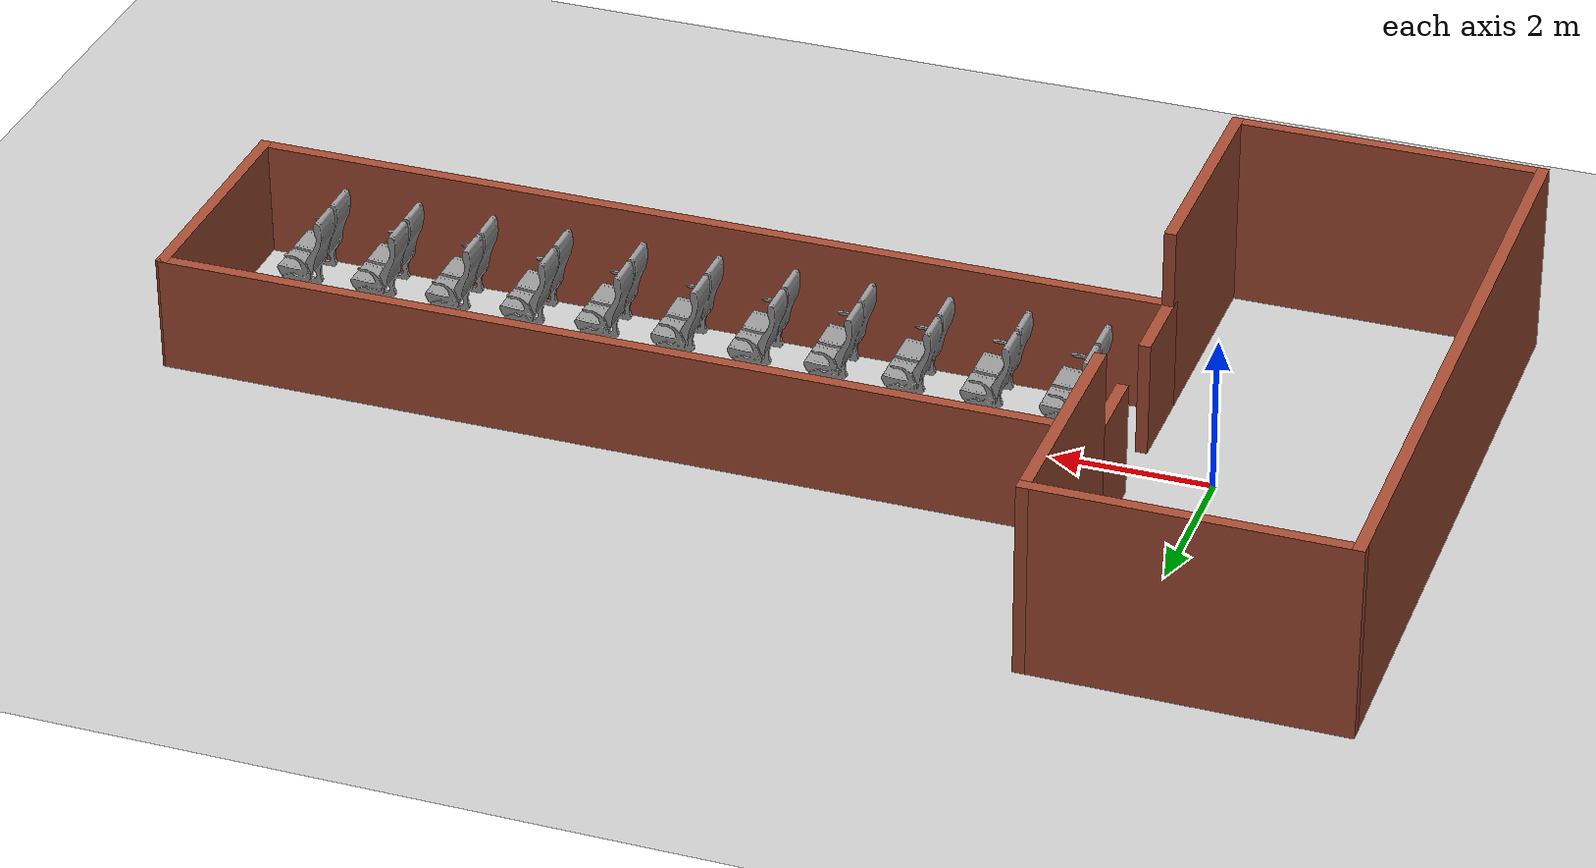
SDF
<sdf version="1.7">
 <world name="default">
  <model name="ground_plane">
   <static>1</static>
   <link name="link">
    <collision name="collision">
     <geometry><plane><normal>0 0 1</normal><size>100 100</size></plane></geometry>
     <surface><friction><ode><mu>100</mu><mu2>50</mu2></ode></friction></surface>
    </collision>
    <visual name="visual">
     <cast_shadows>0</cast_shadows>
     <geometry><plane><normal>0 0 1</normal><size>100 100</size></plane></geometry>
     <material>
      <script><uri>file://media/materials/scripts/gazebo.material</uri><name>Gazebo/Grey</name></script>
     </material>
    </visual>
   </link>
  </model>
  <model name="train_body">
   <pose>5.03944 0.009552 0 0 0 -1.56999</pose>
   <link name="Wall_12">
    <pose>0 -4.0165 0 0 -0 3.14159</pose>
    <visual name="Wall_12_Visual_0">
     <pose>-1.01653 0 0.75 0 -0 0</pose>
     <geometry><box><size>1.12829 0.15 1.5</size></box></geometry>
     <material>
      <script><uri>file://media/materials/scripts/gazebo.material</uri><name>Gazebo/Bricks</name></script>
      <ambient>1 1 1 1</ambient>
     </material>
     <meta><layer>0</layer></meta>
    </visual>
    <collision name="Wall_12_Collision_0">
     <geometry><box><size>1.12829 0.15 1.5</size></box></geometry>
     <pose>-1.01653 0 0.75 0 -0 0</pose>
    </collision>
    <visual name="Wall_12_Visual_1">
     <pose>1.01414 0 0.75 0 -0 0</pose>
     <geometry><box><size>1.13307 0.15 1.5</size></box></geometry>
     <material>
      <script><uri>file://media/materials/scripts/gazebo.material</uri><name>Gazebo/Bricks</name></script>
      <ambient>1 1 1 1</ambient>
     </material>
     <meta><layer>0</layer></meta>
    </visual>
    <collision name="Wall_12_Collision_1">
     <geometry><box><size>1.13307 0.15 1.5</size></box></geometry>
     <pose>1.01414 0 0.75 0 -0 0</pose>
    </collision>
   </link>
   <link name="Wall_14">
    <collision name="Wall_14_Collision">
     <geometry><box><size>12 0.15 1.5</size></box></geometry>
     <pose>0 0 0.75 0 -0 0</pose>
    </collision>
    <visual name="Wall_14_Visual">
     <pose>0 0 0.75 0 -0 0</pose>
     <geometry><box><size>12 0.15 1.5</size></box></geometry>
     <material>
      <script><uri>file://media/materials/scripts/gazebo.material</uri><name>Gazebo/Bricks</name></script>
      <ambient>1 1 1 1</ambient>
     </material>
     <meta><layer>0</layer></meta>
    </visual>
    <pose>1.5055 1.9085 0 0 -0 1.5708</pose>
   </link>
   <link name="Wall_17">
    <collision name="Wall_17_Collision">
     <geometry><box><size>12 0.15 1.5</size></box></geometry>
     <pose>0 0 0.75 0 -0 0</pose>
    </collision>
    <visual name="Wall_17_Visual">
     <pose>0 0 0.75 0 -0 0</pose>
     <geometry><box><size>12 0.15 1.5</size></box></geometry>
     <material>
      <script><uri>file://media/materials/scripts/gazebo.material</uri><name>Gazebo/Bricks</name></script>
      <ambient>1 1 1 1</ambient>
     </material>
     <meta><layer>0</layer></meta>
    </visual>
    <pose>-1.50568 1.9085 0 0 -0 1.57083</pose>
   </link>
   <link name="Wall_19">
    <collision name="Wall_19_Collision">
     <geometry><box><size>3.15 0.15 1.5</size></box></geometry>
     <pose>0 0 0.75 0 -0 0</pose>
    </collision>
    <visual name="Wall_19_Visual">
     <pose>0 0 0.75 0 -0 0</pose>
     <geometry><box><size>3.15 0.15 1.5</size></box></geometry>
     <material>
      <script><uri>file://media/materials/scripts/gazebo.material</uri><name>Gazebo/Bricks</name></script>
      <ambient>1 1 1 1</ambient>
     </material>
     <meta><layer>0</layer></meta>
    </visual>
    <pose>0.0055 7.8665 0 0 -0 0</pose>
   </link>
   <link name="Wall_21">
    <collision name="Wall_21_Collision">
     <geometry><box><size>3 0.15 2.5</size></box></geometry>
     <pose>0 0 1.25 0 -0 0</pose>
    </collision>
    <visual name="Wall_21_Visual">
     <pose>0 0 1.25 0 -0 0</pose>
     <geometry><box><size>3 0.15 2.5</size></box></geometry>
     <material>
      <script><uri>file://media/materials/scripts/gazebo.material</uri><name>Gazebo/Bricks</name></script>
      <ambient>1 1 1 1</ambient>
     </material>
     <meta><layer>0</layer></meta>
    </visual>
    <pose>-2.9305 -4.0165 0 0 -0 3.14159</pose>
   </link>
   <link name="Wall_22">
    <collision name="Wall_22_Collision">
     <geometry><box><size>4 0.15 2.5</size></box></geometry>
     <pose>0 0 1.25 0 -0 0</pose>
    </collision>
    <visual name="Wall_22_Visual">
     <pose>0 0 1.25 0 -0 0</pose>
     <geometry><box><size>4 0.15 2.5</size></box></geometry>
     <material>
      <script><uri>file://media/materials/scripts/gazebo.material</uri><name>Gazebo/Bricks</name></script>
      <ambient>1 1 1 1</ambient>
     </material>
     <meta><layer>0</layer></meta>
    </visual>
    <pose>-4.3555 -5.9415 0 0 -0 -1.5708</pose>
   </link>
   <link name="Wall_24">
    <collision name="Wall_24_Collision">
     <geometry><box><size>3 0.15 2.5</size></box></geometry>
     <pose>0 0 1.25 0 -0 0</pose>
    </collision>
    <visual name="Wall_24_Visual">
     <pose>0 0 1.25 0 -0 0</pose>
     <geometry><box><size>3 0.15 2.5</size></box></geometry>
     <material>
      <script><uri>file://media/materials/scripts/gazebo.material</uri><name>Gazebo/Bricks</name></script>
      <ambient>1 1 1 1</ambient>
     </material>
     <meta><layer>0</layer></meta>
    </visual>
    <pose>2.9305 -4.0165 0 0 -0 0</pose>
   </link>
   <link name="Wall_25">
    <collision name="Wall_25_Collision">
     <geometry><box><size>4 0.15 2.5</size></box></geometry>
     <pose>0 0 1.25 0 -0 0</pose>
    </collision>
    <visual name="Wall_25_Visual">
     <pose>0 0 1.25 0 -0 0</pose>
     <geometry><box><size>4 0.15 2.5</size></box></geometry>
     <material>
      <script><uri>file://media/materials/scripts/gazebo.material</uri><name>Gazebo/Bricks</name></script>
      <ambient>1 1 1 1</ambient>
     </material>
     <meta><layer>0</layer></meta>
    </visual>
    <pose>4.3555 -5.9415 0 0 -0 -1.5708</pose>
   </link>
   <link name="Wall_26">
    <collision name="Wall_26_Collision">
     <geometry><box><size>8.861 0.15 2.5</size></box></geometry>
     <pose>0 0 1.25 0 -0 0</pose>
    </collision>
    <visual name="Wall_26_Visual">
     <pose>0 0 1.25 0 -0 0</pose>
     <geometry><box><size>8.861 0.15 2.5</size></box></geometry>
     <material>
      <script><uri>file://media/materials/scripts/gazebo.material</uri><name>Gazebo/Bricks</name></script>
      <ambient>1 1 1 1</ambient>
     </material>
     <meta><layer>0</layer></meta>
    </visual>
    <pose>0 -7.8665 0 0 -0 3.14159</pose>
   </link>
   <static>1</static>
  </model>
  <model name="seat_row">
   <model name="seat">
    <link name="link_0">
     <inertial>
      <mass>1</mass>
      <inertia>
       <ixx>0.166667</ixx>
       <ixy>0</ixy>
       <ixz>0</ixz>
       <iyy>0.166667</iyy>
       <iyz>0</iyz>
       <izz>0.166667</izz>
      </inertia>
     </inertial>
     <visual name="visual">
      <pose>-0.3 -0.5 0 0 -0 0</pose>
      <geometry>
       <mesh><uri>/home/jatin/.gazebo/models/seat1/meshes/seat1.stl</uri><scale>0.001 0.001 0.001</scale></mesh>
      </geometry>
      <material>
       <lighting>1</lighting>
       <script><uri>file://media/materials/scripts/gazebo.material</uri><name>Gazebo/Grey</name></script>
       <shader type="pixel"><normal_map>__default__</normal_map></shader>
       <ambient>0.3 0.3 0.3 1</ambient>
       <diffuse>0.7 0.7 0.7 1</diffuse>
       <specular>0.01 0.01 0.01 1</specular>
       <emissive>0 0 0 1</emissive>
      </material>
     </visual>
     <collision name="collision">
      <pose>-0.3 -0.5 0 0 -0 0</pose>
      <geometry>
       <mesh><uri>/home/jatin/.gazebo/models/seat1/meshes/seat1.stl</uri><scale>0.001 0.001 0.001</scale></mesh>
      </geometry>
      <surface>
       <friction>
        <ode><mu>10000</mu><mu2>10000</mu2><fdir1>0 0 0</fdir1><slip1>0</slip1><slip2>0</slip2></ode>
        <torsional>
         <coefficient>1</coefficient>
         <patch_radius>0</patch_radius>
         <surface_radius>0</surface_radius>
         <use_patch_radius>1</use_patch_radius>
         <ode><slip>0</slip></ode>
        </torsional>
       </friction>
       <bounce><restitution_coefficient>0</restitution_coefficient><threshold>1e+06</threshold></bounce>
       <contact>
        <collide_without_contact>0</collide_without_contact>
        <collide_without_contact_bitmask>1</collide_without_contact_bitmask>
        <collide_bitmask>1</collide_bitmask>
        <ode>
         <soft_cfm>0</soft_cfm>
         <soft_erp>0.2</soft_erp>
         <kp>1e+13</kp>
         <kd>1</kd>
         <max_vel>0.01</max_vel>
         <min_depth>0</min_depth>
        </ode>
        <bullet>
         <split_impulse>1</split_impulse>
         <split_impulse_penetration_threshold>-0.01</split_impulse_penetration_threshold>
         <soft_cfm>0</soft_cfm>
         <soft_erp>0.2</soft_erp>
         <kp>1e+13</kp>
         <kd>1</kd>
        </bullet>
       </contact>
      </surface>
     </collision>
    </link>
    <static>0</static>
    <pose>-5.00552 -0.00365 0 0 -0 0</pose>
   </model>
   <model name="seat_0">
    <link name="link_0">
     <inertial>
      <mass>1</mass>
      <inertia>
       <ixx>0.166667</ixx>
       <ixy>0</ixy>
       <ixz>0</ixz>
       <iyy>0.166667</iyy>
       <iyz>0</iyz>
       <izz>0.166667</izz>
      </inertia>
     </inertial>
     <visual name="visual">
      <pose>-0.3 -0.5 0 0 -0 0</pose>
      <geometry>
       <mesh><uri>/home/jatin/.gazebo/models/seat1/meshes/seat1.stl</uri><scale>0.001 0.001 0.001</scale></mesh>
      </geometry>
      <material>
       <lighting>1</lighting>
       <script><uri>file://media/materials/scripts/gazebo.material</uri><name>Gazebo/Grey</name></script>
       <shader type="pixel"><normal_map>__default__</normal_map></shader>
       <ambient>0.3 0.3 0.3 1</ambient>
       <diffuse>0.7 0.7 0.7 1</diffuse>
       <specular>0.01 0.01 0.01 1</specular>
       <emissive>0 0 0 1</emissive>
      </material>
     </visual>
     <collision name="collision">
      <pose>-0.3 -0.5 0 0 -0 0</pose>
      <geometry>
       <mesh><uri>/home/jatin/.gazebo/models/seat1/meshes/seat1.stl</uri><scale>0.001 0.001 0.001</scale></mesh>
      </geometry>
      <surface>
       <friction>
        <ode><mu>10000</mu><mu2>10000</mu2><fdir1>0 0 0</fdir1><slip1>0</slip1><slip2>0</slip2></ode>
        <torsional>
         <coefficient>1</coefficient>
         <patch_radius>0</patch_radius>
         <surface_radius>0</surface_radius>
         <use_patch_radius>1</use_patch_radius>
         <ode><slip>0</slip></ode>
        </torsional>
       </friction>
       <bounce><restitution_coefficient>0</restitution_coefficient><threshold>1e+06</threshold></bounce>
       <contact>
        <collide_without_contact>0</collide_without_contact>
        <collide_without_contact_bitmask>1</collide_without_contact_bitmask>
        <collide_bitmask>1</collide_bitmask>
        <ode>
         <soft_cfm>0</soft_cfm>
         <soft_erp>0.2</soft_erp>
         <kp>1e+13</kp>
         <kd>1</kd>
         <max_vel>0.01</max_vel>
         <min_depth>0</min_depth>
        </ode>
        <bullet>
         <split_impulse>1</split_impulse>
         <split_impulse_penetration_threshold>-0.01</split_impulse_penetration_threshold>
         <soft_cfm>0</soft_cfm>
         <soft_erp>0.2</soft_erp>
         <kp>1e+13</kp>
         <kd>1</kd>
        </bullet>
       </contact>
      </surface>
     </collision>
    </link>
    <static>0</static>
    <pose>-4.00113 0.002298 0 0 -0 0</pose>
   </model>
   <model name="seat_1">
    <link name="link_0">
     <inertial>
      <mass>1</mass>
      <inertia>
       <ixx>0.166667</ixx>
       <ixy>0</ixy>
       <ixz>0</ixz>
       <iyy>0.166667</iyy>
       <iyz>0</iyz>
       <izz>0.166667</izz>
      </inertia>
     </inertial>
     <visual name="visual">
      <pose>-0.3 -0.5 0 0 -0 0</pose>
      <geometry>
       <mesh><uri>/home/jatin/.gazebo/models/seat1/meshes/seat1.stl</uri><scale>0.001 0.001 0.001</scale></mesh>
      </geometry>
      <material>
       <lighting>1</lighting>
       <script><uri>file://media/materials/scripts/gazebo.material</uri><name>Gazebo/Grey</name></script>
       <shader type="pixel"><normal_map>__default__</normal_map></shader>
       <ambient>0.3 0.3 0.3 1</ambient>
       <diffuse>0.7 0.7 0.7 1</diffuse>
       <specular>0.01 0.01 0.01 1</specular>
       <emissive>0 0 0 1</emissive>
      </material>
     </visual>
     <collision name="collision">
      <pose>-0.3 -0.5 0 0 -0 0</pose>
      <geometry>
       <mesh><uri>/home/jatin/.gazebo/models/seat1/meshes/seat1.stl</uri><scale>0.001 0.001 0.001</scale></mesh>
      </geometry>
      <surface>
       <friction>
        <ode><mu>10000</mu><mu2>10000</mu2><fdir1>0 0 0</fdir1><slip1>0</slip1><slip2>0</slip2></ode>
        <torsional>
         <coefficient>1</coefficient>
         <patch_radius>0</patch_radius>
         <surface_radius>0</surface_radius>
         <use_patch_radius>1</use_patch_radius>
         <ode><slip>0</slip></ode>
        </torsional>
       </friction>
       <bounce><restitution_coefficient>0</restitution_coefficient><threshold>1e+06</threshold></bounce>
       <contact>
        <collide_without_contact>0</collide_without_contact>
        <collide_without_contact_bitmask>1</collide_without_contact_bitmask>
        <collide_bitmask>1</collide_bitmask>
        <ode>
         <soft_cfm>0</soft_cfm>
         <soft_erp>0.2</soft_erp>
         <kp>1e+13</kp>
         <kd>1</kd>
         <max_vel>0.01</max_vel>
         <min_depth>0</min_depth>
        </ode>
        <bullet>
         <split_impulse>1</split_impulse>
         <split_impulse_penetration_threshold>-0.01</split_impulse_penetration_threshold>
         <soft_cfm>0</soft_cfm>
         <soft_erp>0.2</soft_erp>
         <kp>1e+13</kp>
         <kd>1</kd>
        </bullet>
       </contact>
      </surface>
     </collision>
    </link>
    <static>0</static>
    <pose>-2.99788 0.000297 0 0 -0 0</pose>
   </model>
   <model name="seat_2">
    <link name="link_0">
     <inertial>
      <mass>1</mass>
      <inertia>
       <ixx>0.166667</ixx>
       <ixy>0</ixy>
       <ixz>0</ixz>
       <iyy>0.166667</iyy>
       <iyz>0</iyz>
       <izz>0.166667</izz>
      </inertia>
     </inertial>
     <visual name="visual">
      <pose>-0.3 -0.5 0 0 -0 0</pose>
      <geometry>
       <mesh><uri>/home/jatin/.gazebo/models/seat1/meshes/seat1.stl</uri><scale>0.001 0.001 0.001</scale></mesh>
      </geometry>
      <material>
       <lighting>1</lighting>
       <script><uri>file://media/materials/scripts/gazebo.material</uri><name>Gazebo/Grey</name></script>
       <shader type="pixel"><normal_map>__default__</normal_map></shader>
       <ambient>0.3 0.3 0.3 1</ambient>
       <diffuse>0.7 0.7 0.7 1</diffuse>
       <specular>0.01 0.01 0.01 1</specular>
       <emissive>0 0 0 1</emissive>
      </material>
     </visual>
     <collision name="collision">
      <pose>-0.3 -0.5 0 0 -0 0</pose>
      <geometry>
       <mesh><uri>/home/jatin/.gazebo/models/seat1/meshes/seat1.stl</uri><scale>0.001 0.001 0.001</scale></mesh>
      </geometry>
      <surface>
       <friction>
        <ode><mu>10000</mu><mu2>10000</mu2><fdir1>0 0 0</fdir1><slip1>0</slip1><slip2>0</slip2></ode>
        <torsional>
         <coefficient>1</coefficient>
         <patch_radius>0</patch_radius>
         <surface_radius>0</surface_radius>
         <use_patch_radius>1</use_patch_radius>
         <ode><slip>0</slip></ode>
        </torsional>
       </friction>
       <bounce><restitution_coefficient>0</restitution_coefficient><threshold>1e+06</threshold></bounce>
       <contact>
        <collide_without_contact>0</collide_without_contact>
        <collide_without_contact_bitmask>1</collide_without_contact_bitmask>
        <collide_bitmask>1</collide_bitmask>
        <ode>
         <soft_cfm>0</soft_cfm>
         <soft_erp>0.2</soft_erp>
         <kp>1e+13</kp>
         <kd>1</kd>
         <max_vel>0.01</max_vel>
         <min_depth>0</min_depth>
        </ode>
        <bullet>
         <split_impulse>1</split_impulse>
         <split_impulse_penetration_threshold>-0.01</split_impulse_penetration_threshold>
         <soft_cfm>0</soft_cfm>
         <soft_erp>0.2</soft_erp>
         <kp>1e+13</kp>
         <kd>1</kd>
        </bullet>
       </contact>
      </surface>
     </collision>
    </link>
    <static>0</static>
    <pose>-1.99507 -0.003986 0 0 -0 0</pose>
   </model>
   <model name="seat_3">
    <link name="link_0">
     <inertial>
      <mass>1</mass>
      <inertia>
       <ixx>0.166667</ixx>
       <ixy>0</ixy>
       <ixz>0</ixz>
       <iyy>0.166667</iyy>
       <iyz>0</iyz>
       <izz>0.166667</izz>
      </inertia>
     </inertial>
     <visual name="visual">
      <pose>-0.3 -0.5 0 0 -0 0</pose>
      <geometry>
       <mesh><uri>/home/jatin/.gazebo/models/seat1/meshes/seat1.stl</uri><scale>0.001 0.001 0.001</scale></mesh>
      </geometry>
      <material>
       <lighting>1</lighting>
       <script><uri>file://media/materials/scripts/gazebo.material</uri><name>Gazebo/Grey</name></script>
       <shader type="pixel"><normal_map>__default__</normal_map></shader>
       <ambient>0.3 0.3 0.3 1</ambient>
       <diffuse>0.7 0.7 0.7 1</diffuse>
       <specular>0.01 0.01 0.01 1</specular>
       <emissive>0 0 0 1</emissive>
      </material>
     </visual>
     <collision name="collision">
      <pose>-0.3 -0.5 0 0 -0 0</pose>
      <geometry>
       <mesh><uri>/home/jatin/.gazebo/models/seat1/meshes/seat1.stl</uri><scale>0.001 0.001 0.001</scale></mesh>
      </geometry>
      <surface>
       <friction>
        <ode><mu>10000</mu><mu2>10000</mu2><fdir1>0 0 0</fdir1><slip1>0</slip1><slip2>0</slip2></ode>
        <torsional>
         <coefficient>1</coefficient>
         <patch_radius>0</patch_radius>
         <surface_radius>0</surface_radius>
         <use_patch_radius>1</use_patch_radius>
         <ode><slip>0</slip></ode>
        </torsional>
       </friction>
       <bounce><restitution_coefficient>0</restitution_coefficient><threshold>1e+06</threshold></bounce>
       <contact>
        <collide_without_contact>0</collide_without_contact>
        <collide_without_contact_bitmask>1</collide_without_contact_bitmask>
        <collide_bitmask>1</collide_bitmask>
        <ode>
         <soft_cfm>0</soft_cfm>
         <soft_erp>0.2</soft_erp>
         <kp>1e+13</kp>
         <kd>1</kd>
         <max_vel>0.01</max_vel>
         <min_depth>0</min_depth>
        </ode>
        <bullet>
         <split_impulse>1</split_impulse>
         <split_impulse_penetration_threshold>-0.01</split_impulse_penetration_threshold>
         <soft_cfm>0</soft_cfm>
         <soft_erp>0.2</soft_erp>
         <kp>1e+13</kp>
         <kd>1</kd>
        </bullet>
       </contact>
      </surface>
     </collision>
    </link>
    <static>0</static>
    <pose>-1.00236 -0.001734 0 0 -0 0</pose>
   </model>
   <model name="seat_4">
    <link name="link_0">
     <inertial>
      <mass>1</mass>
      <inertia>
       <ixx>0.166667</ixx>
       <ixy>0</ixy>
       <ixz>0</ixz>
       <iyy>0.166667</iyy>
       <iyz>0</iyz>
       <izz>0.166667</izz>
      </inertia>
     </inertial>
     <visual name="visual">
      <pose>-0.3 -0.5 0 0 -0 0</pose>
      <geometry>
       <mesh><uri>/home/jatin/.gazebo/models/seat1/meshes/seat1.stl</uri><scale>0.001 0.001 0.001</scale></mesh>
      </geometry>
      <material>
       <lighting>1</lighting>
       <script><uri>file://media/materials/scripts/gazebo.material</uri><name>Gazebo/Grey</name></script>
       <shader type="pixel"><normal_map>__default__</normal_map></shader>
       <ambient>0.3 0.3 0.3 1</ambient>
       <diffuse>0.7 0.7 0.7 1</diffuse>
       <specular>0.01 0.01 0.01 1</specular>
       <emissive>0 0 0 1</emissive>
      </material>
     </visual>
     <collision name="collision">
      <pose>-0.3 -0.5 0 0 -0 0</pose>
      <geometry>
       <mesh><uri>/home/jatin/.gazebo/models/seat1/meshes/seat1.stl</uri><scale>0.001 0.001 0.001</scale></mesh>
      </geometry>
      <surface>
       <friction>
        <ode><mu>10000</mu><mu2>10000</mu2><fdir1>0 0 0</fdir1><slip1>0</slip1><slip2>0</slip2></ode>
        <torsional>
         <coefficient>1</coefficient>
         <patch_radius>0</patch_radius>
         <surface_radius>0</surface_radius>
         <use_patch_radius>1</use_patch_radius>
         <ode><slip>0</slip></ode>
        </torsional>
       </friction>
       <bounce><restitution_coefficient>0</restitution_coefficient><threshold>1e+06</threshold></bounce>
       <contact>
        <collide_without_contact>0</collide_without_contact>
        <collide_without_contact_bitmask>1</collide_without_contact_bitmask>
        <collide_bitmask>1</collide_bitmask>
        <ode>
         <soft_cfm>0</soft_cfm>
         <soft_erp>0.2</soft_erp>
         <kp>1e+13</kp>
         <kd>1</kd>
         <max_vel>0.01</max_vel>
         <min_depth>0</min_depth>
        </ode>
        <bullet>
         <split_impulse>1</split_impulse>
         <split_impulse_penetration_threshold>-0.01</split_impulse_penetration_threshold>
         <soft_cfm>0</soft_cfm>
         <soft_erp>0.2</soft_erp>
         <kp>1e+13</kp>
         <kd>1</kd>
        </bullet>
       </contact>
      </surface>
     </collision>
    </link>
    <static>0</static>
    <pose>-0.002084 0.002792 0 0 -0 0</pose>
   </model>
   <model name="seat_5">
    <link name="link_0">
     <inertial>
      <mass>1</mass>
      <inertia>
       <ixx>0.166667</ixx>
       <ixy>0</ixy>
       <ixz>0</ixz>
       <iyy>0.166667</iyy>
       <iyz>0</iyz>
       <izz>0.166667</izz>
      </inertia>
     </inertial>
     <visual name="visual">
      <pose>-0.3 -0.5 0 0 -0 0</pose>
      <geometry>
       <mesh><uri>/home/jatin/.gazebo/models/seat1/meshes/seat1.stl</uri><scale>0.001 0.001 0.001</scale></mesh>
      </geometry>
      <material>
       <lighting>1</lighting>
       <script><uri>file://media/materials/scripts/gazebo.material</uri><name>Gazebo/Grey</name></script>
       <shader type="pixel"><normal_map>__default__</normal_map></shader>
       <ambient>0.3 0.3 0.3 1</ambient>
       <diffuse>0.7 0.7 0.7 1</diffuse>
       <specular>0.01 0.01 0.01 1</specular>
       <emissive>0 0 0 1</emissive>
      </material>
     </visual>
     <collision name="collision">
      <pose>-0.3 -0.5 0 0 -0 0</pose>
      <geometry>
       <mesh><uri>/home/jatin/.gazebo/models/seat1/meshes/seat1.stl</uri><scale>0.001 0.001 0.001</scale></mesh>
      </geometry>
      <surface>
       <friction>
        <ode><mu>10000</mu><mu2>10000</mu2><fdir1>0 0 0</fdir1><slip1>0</slip1><slip2>0</slip2></ode>
        <torsional>
         <coefficient>1</coefficient>
         <patch_radius>0</patch_radius>
         <surface_radius>0</surface_radius>
         <use_patch_radius>1</use_patch_radius>
         <ode><slip>0</slip></ode>
        </torsional>
       </friction>
       <bounce><restitution_coefficient>0</restitution_coefficient><threshold>1e+06</threshold></bounce>
       <contact>
        <collide_without_contact>0</collide_without_contact>
        <collide_without_contact_bitmask>1</collide_without_contact_bitmask>
        <collide_bitmask>1</collide_bitmask>
        <ode>
         <soft_cfm>0</soft_cfm>
         <soft_erp>0.2</soft_erp>
         <kp>1e+13</kp>
         <kd>1</kd>
         <max_vel>0.01</max_vel>
         <min_depth>0</min_depth>
        </ode>
        <bullet>
         <split_impulse>1</split_impulse>
         <split_impulse_penetration_threshold>-0.01</split_impulse_penetration_threshold>
         <soft_cfm>0</soft_cfm>
         <soft_erp>0.2</soft_erp>
         <kp>1e+13</kp>
         <kd>1</kd>
        </bullet>
       </contact>
      </surface>
     </collision>
    </link>
    <static>0</static>
    <pose>1.00189 0.000665 0 0 -0 0</pose>
   </model>
   <model name="seat_6">
    <link name="link_0">
     <inertial>
      <mass>1</mass>
      <inertia>
       <ixx>0.166667</ixx>
       <ixy>0</ixy>
       <ixz>0</ixz>
       <iyy>0.166667</iyy>
       <iyz>0</iyz>
       <izz>0.166667</izz>
      </inertia>
     </inertial>
     <visual name="visual">
      <pose>-0.3 -0.5 0 0 -0 0</pose>
      <geometry>
       <mesh><uri>/home/jatin/.gazebo/models/seat1/meshes/seat1.stl</uri><scale>0.001 0.001 0.001</scale></mesh>
      </geometry>
      <material>
       <lighting>1</lighting>
       <script><uri>file://media/materials/scripts/gazebo.material</uri><name>Gazebo/Grey</name></script>
       <shader type="pixel"><normal_map>__default__</normal_map></shader>
       <ambient>0.3 0.3 0.3 1</ambient>
       <diffuse>0.7 0.7 0.7 1</diffuse>
       <specular>0.01 0.01 0.01 1</specular>
       <emissive>0 0 0 1</emissive>
      </material>
     </visual>
     <collision name="collision">
      <pose>-0.3 -0.5 0 0 -0 0</pose>
      <geometry>
       <mesh><uri>/home/jatin/.gazebo/models/seat1/meshes/seat1.stl</uri><scale>0.001 0.001 0.001</scale></mesh>
      </geometry>
      <surface>
       <friction>
        <ode><mu>10000</mu><mu2>10000</mu2><fdir1>0 0 0</fdir1><slip1>0</slip1><slip2>0</slip2></ode>
        <torsional>
         <coefficient>1</coefficient>
         <patch_radius>0</patch_radius>
         <surface_radius>0</surface_radius>
         <use_patch_radius>1</use_patch_radius>
         <ode><slip>0</slip></ode>
        </torsional>
       </friction>
       <bounce><restitution_coefficient>0</restitution_coefficient><threshold>1e+06</threshold></bounce>
       <contact>
        <collide_without_contact>0</collide_without_contact>
        <collide_without_contact_bitmask>1</collide_without_contact_bitmask>
        <collide_bitmask>1</collide_bitmask>
        <ode>
         <soft_cfm>0</soft_cfm>
         <soft_erp>0.2</soft_erp>
         <kp>1e+13</kp>
         <kd>1</kd>
         <max_vel>0.01</max_vel>
         <min_depth>0</min_depth>
        </ode>
        <bullet>
         <split_impulse>1</split_impulse>
         <split_impulse_penetration_threshold>-0.01</split_impulse_penetration_threshold>
         <soft_cfm>0</soft_cfm>
         <soft_erp>0.2</soft_erp>
         <kp>1e+13</kp>
         <kd>1</kd>
        </bullet>
       </contact>
      </surface>
     </collision>
    </link>
    <static>0</static>
    <pose>1.99918 -0.001705 0 0 -0 0</pose>
   </model>
   <model name="seat_7">
    <link name="link_0">
     <inertial>
      <mass>1</mass>
      <inertia>
       <ixx>0.166667</ixx>
       <ixy>0</ixy>
       <ixz>0</ixz>
       <iyy>0.166667</iyy>
       <iyz>0</iyz>
       <izz>0.166667</izz>
      </inertia>
     </inertial>
     <visual name="visual">
      <pose>-0.3 -0.5 0 0 -0 0</pose>
      <geometry>
       <mesh><uri>/home/jatin/.gazebo/models/seat1/meshes/seat1.stl</uri><scale>0.001 0.001 0.001</scale></mesh>
      </geometry>
      <material>
       <lighting>1</lighting>
       <script><uri>file://media/materials/scripts/gazebo.material</uri><name>Gazebo/Grey</name></script>
       <shader type="pixel"><normal_map>__default__</normal_map></shader>
       <ambient>0.3 0.3 0.3 1</ambient>
       <diffuse>0.7 0.7 0.7 1</diffuse>
       <specular>0.01 0.01 0.01 1</specular>
       <emissive>0 0 0 1</emissive>
      </material>
     </visual>
     <collision name="collision">
      <pose>-0.3 -0.5 0 0 -0 0</pose>
      <geometry>
       <mesh><uri>/home/jatin/.gazebo/models/seat1/meshes/seat1.stl</uri><scale>0.001 0.001 0.001</scale></mesh>
      </geometry>
      <surface>
       <friction>
        <ode><mu>10000</mu><mu2>10000</mu2><fdir1>0 0 0</fdir1><slip1>0</slip1><slip2>0</slip2></ode>
        <torsional>
         <coefficient>1</coefficient>
         <patch_radius>0</patch_radius>
         <surface_radius>0</surface_radius>
         <use_patch_radius>1</use_patch_radius>
         <ode><slip>0</slip></ode>
        </torsional>
       </friction>
       <bounce><restitution_coefficient>0</restitution_coefficient><threshold>1e+06</threshold></bounce>
       <contact>
        <collide_without_contact>0</collide_without_contact>
        <collide_without_contact_bitmask>1</collide_without_contact_bitmask>
        <collide_bitmask>1</collide_bitmask>
        <ode>
         <soft_cfm>0</soft_cfm>
         <soft_erp>0.2</soft_erp>
         <kp>1e+13</kp>
         <kd>1</kd>
         <max_vel>0.01</max_vel>
         <min_depth>0</min_depth>
        </ode>
        <bullet>
         <split_impulse>1</split_impulse>
         <split_impulse_penetration_threshold>-0.01</split_impulse_penetration_threshold>
         <soft_cfm>0</soft_cfm>
         <soft_erp>0.2</soft_erp>
         <kp>1e+13</kp>
         <kd>1</kd>
        </bullet>
       </contact>
      </surface>
     </collision>
    </link>
    <static>0</static>
    <pose>2.99864 0.003129 0 0 -0 0</pose>
   </model>
   <model name="seat_8">
    <link name="link_0">
     <inertial>
      <mass>1</mass>
      <inertia>
       <ixx>0.166667</ixx>
       <ixy>0</ixy>
       <ixz>0</ixz>
       <iyy>0.166667</iyy>
       <iyz>0</iyz>
       <izz>0.166667</izz>
      </inertia>
     </inertial>
     <visual name="visual">
      <pose>-0.3 -0.5 0 0 -0 0</pose>
      <geometry>
       <mesh><uri>/home/jatin/.gazebo/models/seat1/meshes/seat1.stl</uri><scale>0.001 0.001 0.001</scale></mesh>
      </geometry>
      <material>
       <lighting>1</lighting>
       <script><uri>file://media/materials/scripts/gazebo.material</uri><name>Gazebo/Grey</name></script>
       <shader type="pixel"><normal_map>__default__</normal_map></shader>
       <ambient>0.3 0.3 0.3 1</ambient>
       <diffuse>0.7 0.7 0.7 1</diffuse>
       <specular>0.01 0.01 0.01 1</specular>
       <emissive>0 0 0 1</emissive>
      </material>
     </visual>
     <collision name="collision">
      <pose>-0.3 -0.5 0 0 -0 0</pose>
      <geometry>
       <mesh><uri>/home/jatin/.gazebo/models/seat1/meshes/seat1.stl</uri><scale>0.001 0.001 0.001</scale></mesh>
      </geometry>
      <surface>
       <friction>
        <ode><mu>10000</mu><mu2>10000</mu2><fdir1>0 0 0</fdir1><slip1>0</slip1><slip2>0</slip2></ode>
        <torsional>
         <coefficient>1</coefficient>
         <patch_radius>0</patch_radius>
         <surface_radius>0</surface_radius>
         <use_patch_radius>1</use_patch_radius>
         <ode><slip>0</slip></ode>
        </torsional>
       </friction>
       <bounce><restitution_coefficient>0</restitution_coefficient><threshold>1e+06</threshold></bounce>
       <contact>
        <collide_without_contact>0</collide_without_contact>
        <collide_without_contact_bitmask>1</collide_without_contact_bitmask>
        <collide_bitmask>1</collide_bitmask>
        <ode>
         <soft_cfm>0</soft_cfm>
         <soft_erp>0.2</soft_erp>
         <kp>1e+13</kp>
         <kd>1</kd>
         <max_vel>0.01</max_vel>
         <min_depth>0</min_depth>
        </ode>
        <bullet>
         <split_impulse>1</split_impulse>
         <split_impulse_penetration_threshold>-0.01</split_impulse_penetration_threshold>
         <soft_cfm>0</soft_cfm>
         <soft_erp>0.2</soft_erp>
         <kp>1e+13</kp>
         <kd>1</kd>
        </bullet>
       </contact>
      </surface>
     </collision>
    </link>
    <static>0</static>
    <pose>4.00193 0.002172 0 0 -0 0</pose>
   </model>
   <model name="seat_9">
    <link name="link_0">
     <inertial>
      <mass>1</mass>
      <inertia>
       <ixx>0.166667</ixx>
       <ixy>0</ixy>
       <ixz>0</ixz>
       <iyy>0.166667</iyy>
       <iyz>0</iyz>
       <izz>0.166667</izz>
      </inertia>
     </inertial>
     <visual name="visual">
      <pose>-0.3 -0.5 0 0 -0 0</pose>
      <geometry>
       <mesh><uri>/home/jatin/.gazebo/models/seat1/meshes/seat1.stl</uri><scale>0.001 0.001 0.001</scale></mesh>
      </geometry>
      <material>
       <lighting>1</lighting>
       <script><uri>file://media/materials/scripts/gazebo.material</uri><name>Gazebo/Grey</name></script>
       <shader type="pixel"><normal_map>__default__</normal_map></shader>
       <ambient>0.3 0.3 0.3 1</ambient>
       <diffuse>0.7 0.7 0.7 1</diffuse>
       <specular>0.01 0.01 0.01 1</specular>
       <emissive>0 0 0 1</emissive>
      </material>
     </visual>
     <collision name="collision">
      <pose>-0.3 -0.5 0 0 -0 0</pose>
      <geometry>
       <mesh><uri>/home/jatin/.gazebo/models/seat1/meshes/seat1.stl</uri><scale>0.001 0.001 0.001</scale></mesh>
      </geometry>
      <surface>
       <friction>
        <ode><mu>10000</mu><mu2>10000</mu2><fdir1>0 0 0</fdir1><slip1>0</slip1><slip2>0</slip2></ode>
        <torsional>
         <coefficient>1</coefficient>
         <patch_radius>0</patch_radius>
         <surface_radius>0</surface_radius>
         <use_patch_radius>1</use_patch_radius>
         <ode><slip>0</slip></ode>
        </torsional>
       </friction>
       <bounce><restitution_coefficient>0</restitution_coefficient><threshold>1e+06</threshold></bounce>
       <contact>
        <collide_without_contact>0</collide_without_contact>
        <collide_without_contact_bitmask>1</collide_without_contact_bitmask>
        <collide_bitmask>1</collide_bitmask>
        <ode>
         <soft_cfm>0</soft_cfm>
         <soft_erp>0.2</soft_erp>
         <kp>1e+13</kp>
         <kd>1</kd>
         <max_vel>0.01</max_vel>
         <min_depth>0</min_depth>
        </ode>
        <bullet>
         <split_impulse>1</split_impulse>
         <split_impulse_penetration_threshold>-0.01</split_impulse_penetration_threshold>
         <soft_cfm>0</soft_cfm>
         <soft_erp>0.2</soft_erp>
         <kp>1e+13</kp>
         <kd>1</kd>
        </bullet>
       </contact>
      </surface>
     </collision>
    </link>
    <static>0</static>
    <pose>5.00242 -0.000278 0 0 -0 0</pose>
   </model>
   <static>0</static>
   <pose>6.96038 -0.872458 9.1e-05 7e-06 -2e-06 -0</pose>
  </model>
 </world>
</sdf>
